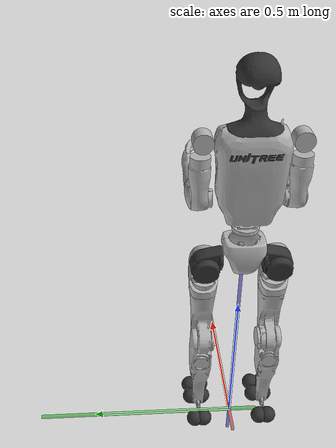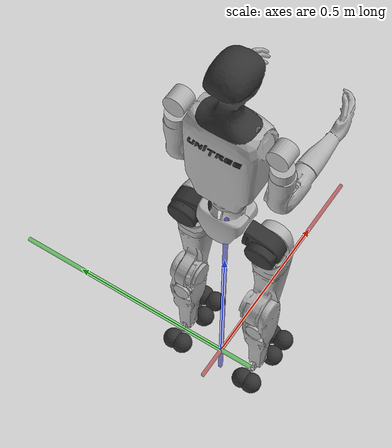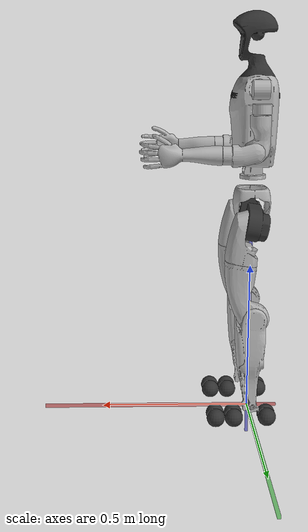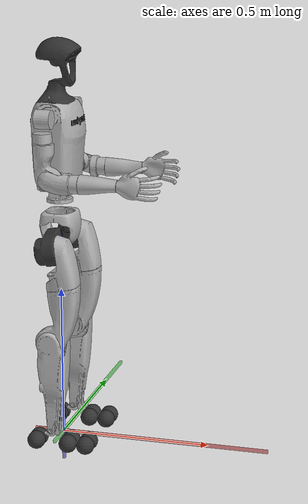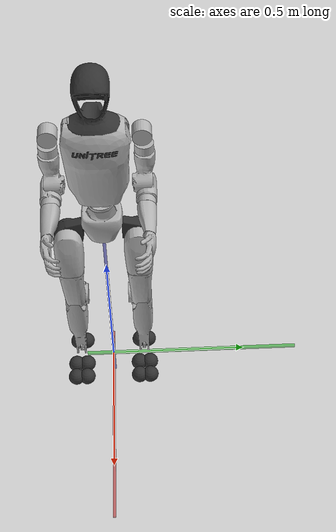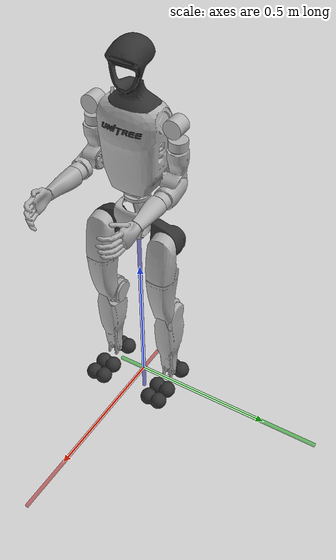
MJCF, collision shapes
<mujoco model="g1_12dof">
  <compiler angle="radian" meshdir="meshes/"/>

  <statistic meansize="0.144785" extent="1.23314" center="0.025392 2.0634e-05 -0.245975"/>
  <default>
    <joint damping="2" armature="0.01"/>
    <default class="g1">
      <position dampratio="1" inheritrange="1"/>
    </default>

  </default>

  <asset>
    <mesh name="pelvis" file="pelvis.STL"/>
    <mesh name="pelvis_contour_link" file="pelvis_contour_link.STL"/>
    <mesh name="left_hip_pitch_link" file="left_hip_pitch_link.STL"/>
    <mesh name="left_hip_roll_link" file="left_hip_roll_link.STL"/>
    <mesh name="left_hip_yaw_link" file="left_hip_yaw_link.STL"/>
    <mesh name="left_knee_link" file="left_knee_link.STL"/>
    <mesh name="left_ankle_pitch_link" file="left_ankle_pitch_link.STL"/>
    <mesh name="left_ankle_roll_link" file="left_ankle_roll_link.STL"/>
    <mesh name="right_hip_pitch_link" file="right_hip_pitch_link.STL"/>
    <mesh name="right_hip_roll_link" file="right_hip_roll_link.STL"/>
    <mesh name="right_hip_yaw_link" file="right_hip_yaw_link.STL"/>
    <mesh name="right_knee_link" file="right_knee_link.STL"/>
    <mesh name="right_ankle_pitch_link" file="right_ankle_pitch_link.STL"/>
    <mesh name="right_ankle_roll_link" file="right_ankle_roll_link.STL"/>
    <mesh name="torso_link_23dof_rev_1_0" file="torso_link_23dof_rev_1_0.STL"/>
    <mesh name="logo_link" file="logo_link.STL"/>
    <mesh name="head_link" file="head_link.STL"/>
    <mesh name="left_shoulder_pitch_link" file="left_shoulder_pitch_link.STL"/>
    <mesh name="left_shoulder_roll_link" file="left_shoulder_roll_link.STL"/>
    <mesh name="left_shoulder_yaw_link" file="left_shoulder_yaw_link.STL"/>
    <mesh name="left_elbow_link" file="left_elbow_link.STL"/>
    <mesh name="left_wrist_roll_rubber_hand" file="left_wrist_roll_rubber_hand.STL"/>
    <mesh name="right_shoulder_pitch_link" file="right_shoulder_pitch_link.STL"/>
    <mesh name="right_shoulder_roll_link" file="right_shoulder_roll_link.STL"/>
    <mesh name="right_shoulder_yaw_link" file="right_shoulder_yaw_link.STL"/>
    <mesh name="right_elbow_link" file="right_elbow_link.STL"/>
    <mesh name="right_wrist_roll_rubber_hand" file="right_wrist_roll_rubber_hand.STL"/>

    <texture type="2d" name="Metal044B_color"      file="../textures/Metal044B_2K-PNG/Metal044B_2K-PNG_Color.png"/>
    <texture type="2d" name="Metal044B_roughness"  file="../textures/Metal044B_2K-PNG/Metal044B_2K-PNG_Roughness.png"/>
    <texture type="2d" name="Metal044B_metalic"  file="../textures/Metal044B_2K-PNG/Metal044B_2K-PNG_Metalness.png"/>
    <texture type="2d" name="Metal044B_normal"     file="../textures/Metal044B_2K-PNG/Metal044B_2K-PNG_NormalDX.png"/>

    <material name="pbr_metal_silver_rough">
      <layer role="rgb"        texture="Metal044B_color"/>
      <layer role="normal"     texture="Metal044B_normal"/>
      <layer role="roughness"  texture="Metal044B_roughness"/>
      <layer role="metallic"  texture="Metal044B_metalic"/>
    </material>

    <texture type="2d" name="Plastic006_color"      file="../textures//Plastic006_2K-PNG/Plastic006_2K-PNG_Color.png"/>
    <texture type="2d" name="Plastic006_roughness"  file="../textures//Plastic006_2K-PNG/Plastic006_2K-PNG_Roughness.png"/>
    <texture type="2d" name="Plastic006_normal"     file="../textures//Plastic006_2K-PNG/Plastic006_2K-PNG_NormalDX.png"/>

    <material name="pbr_plastic_black" metallic ="0.05">
      <layer role="rgb"        texture="Plastic006_color"/>
      <layer role="normal"     texture="Plastic006_normal"/>
      <layer role="roughness"  texture="Plastic006_roughness"/>
    </material>
  </asset>

  <worldbody>
    <body name="command_indicator_mocap" pos="0 0 0" mocap="true">
      <geom conaffinity="0" contype="0" pos="0.3 0 0" rgba="0.7 0 0 0.5" size="0.4 0.005 0.005" type="box" group="1"></geom>
      <geom conaffinity="0" contype="0" pos="0 0.3 0" rgba="0 0.7 0 0.5" size="0.005 0.4 0.005" type="box" group="1"></geom>
      <geom conaffinity="0" contype="0" pos="0 0 0.3" rgba="0 0 0.7 0.5" size="0.005 0.005 0.4" type="box" group="1"></geom>
    </body>

    <body name="pelvis" pos="0 0 0.793">
      <inertial pos="0.0144905 0.000151462 0.144068" quat="0.999881 -0.000505543 -0.0154276 0.000328408" mass="17.7349" diaginertia="0.552723 0.454092 0.211762"/>
      <joint name="floating_base_joint" type="free" limited="false" actuatorfrclimited="false"/>
      <site name="imu_in_pelvis" size="0.01" pos="0.04525 0 -0.08339"/>
      <geom type="mesh" contype="0" conaffinity="0" group="1"  material="pbr_metal_silver_rough" density="0" rgba="0.2 0.2 0.2 1" mesh="pelvis"/>
      <geom type="mesh" contype="0" conaffinity="0" group="1"  material="pbr_metal_silver_rough" density="0" rgba="0.7 0.7 0.7 1" mesh="pelvis_contour_link"/>
      <geom type="mesh" rgba="0.7 0.7 0.7 1" mesh="pelvis_contour_link"/>
      <geom type="mesh" contype="0" conaffinity="0" group="1"  material="pbr_metal_silver_rough" density="0" rgba="0.7 0.7 0.7 1" mesh="torso_link_23dof_rev_1_0"/>
      <geom type="mesh" rgba="0.7 0.7 0.7 1" mesh="torso_link_23dof_rev_1_0"/>
      <geom type="mesh" contype="0" conaffinity="0" group="1"  material="pbr_plastic_black" density="0" rgba="0.2 0.2 0.2 1" mesh="logo_link"/>
      <geom type="mesh" rgba="0.2 0.2 0.2 1" mesh="logo_link"/>
      <geom type="mesh" contype="0" conaffinity="0" group="1"  material="pbr_plastic_black" density="0" rgba="0.2 0.2 0.2 1" mesh="head_link"/>
      <geom type="mesh" rgba="0.2 0.2 0.2 1" mesh="head_link"/>
      <geom pos="-7.2e-06 0.10022 0.29178" quat="0.990264 0.139201 1.38722e-05 -9.86868e-05" type="mesh" contype="0" conaffinity="0" group="1" density="0" material="pbr_metal_silver_rough" rgba="0.7 0.7 0.7 1" mesh="left_shoulder_pitch_link"/>
      <geom size="0.03 0.025" pos="7.72569e-07 0.141427 0.293195" quat="0.700213 0.0985001 0.700232 0.0983605" type="cylinder" rgba="0.7 0.7 0.7 1"/>
      <geom pos="3.73942e-07 0.14056 0.288961" quat="1 3.00026e-05 2.74716e-05 -9.57958e-05" type="mesh" contype="0" conaffinity="0" group="1" density="0" material="pbr_metal_silver_rough" rgba="0.7 0.7 0.7 1" mesh="left_shoulder_roll_link"/>
      <geom size="0.03 0.015" pos="-0.00400139 0.146564 0.235962" quat="1 3.00026e-05 2.74716e-05 -9.57958e-05" type="cylinder" rgba="0.7 0.7 0.7 1"/>
      <geom pos="-4.10007e-06 0.146807 0.185762" quat="1 3.00026e-05 2.74716e-05 -9.57958e-05" type="mesh" contype="0" conaffinity="0" group="1" density="0" material="pbr_metal_silver_rough" rgba="0.7 0.7 0.7 1" mesh="left_shoulder_yaw_link"/>
      <geom pos="-4.10007e-06 0.146807 0.185762" quat="1 3.00026e-05 2.74716e-05 -9.57958e-05" type="mesh" rgba="0.7 0.7 0.7 1" mesh="left_shoulder_yaw_link"/>
      <geom pos="0.0157745 0.146808 0.105243" quat="1 3.00026e-05 2.74716e-05 -9.57958e-05" type="mesh" contype="0" conaffinity="0" group="1" density="0" material="pbr_metal_silver_rough" rgba="0.7 0.7 0.7 1" mesh="left_elbow_link"/>
      <geom pos="0.0157745 0.146808 0.105243" quat="1 3.00026e-05 2.74716e-05 -9.57958e-05" type="mesh" rgba="0.7 0.7 0.7 1" mesh="left_elbow_link"/>
      <geom pos="0.115774 0.148678 0.0952374" quat="1 3.00026e-05 2.74716e-05 -9.57958e-05" type="mesh" contype="0" conaffinity="0" group="1" density="0" material="pbr_metal_silver_rough" rgba="0.7 0.7 0.7 1" mesh="left_wrist_roll_rubber_hand"/>
      <geom pos="0.115774 0.148678 0.0952374" quat="1 3.00026e-05 2.74716e-05 -9.57958e-05" type="mesh" rgba="0.7 0.7 0.7 1" mesh="left_wrist_roll_rubber_hand"/>
      <geom pos="-7.2e-06 -0.10021 0.29178" quat="0.990264 -0.139201 1.38722e-05 9.86868e-05" type="mesh" contype="0" conaffinity="0" group="1" density="0" material="pbr_metal_silver_rough" rgba="0.7 0.7 0.7 1" mesh="right_shoulder_pitch_link"/>
      <geom size="0.03 0.025" pos="7.72569e-07 -0.141417 0.293195" quat="0.700213 -0.0985001 0.700232 -0.0983605" type="cylinder" rgba="0.7 0.7 0.7 1"/>
      <geom pos="3.73942e-07 -0.14055 0.288961" quat="1 -3.00026e-05 2.74716e-05 9.57958e-05" type="mesh" contype="0" conaffinity="0" group="1" density="0" material="pbr_metal_silver_rough" rgba="0.7 0.7 0.7 1" mesh="right_shoulder_roll_link"/>
      <geom size="0.03 0.015" pos="-0.00400139 -0.146554 0.235962" quat="1 -3.00026e-05 2.74716e-05 9.57958e-05" type="cylinder" rgba="0.7 0.7 0.7 1"/>
      <geom pos="-4.10007e-06 -0.146797 0.185762" quat="1 -3.00026e-05 2.74716e-05 9.57958e-05" type="mesh" contype="0" conaffinity="0" group="1" density="0" material="pbr_metal_silver_rough" rgba="0.7 0.7 0.7 1" mesh="right_shoulder_yaw_link"/>
      <geom pos="-4.10007e-06 -0.146797 0.185762" quat="1 -3.00026e-05 2.74716e-05 9.57958e-05" type="mesh" rgba="0.7 0.7 0.7 1" mesh="right_shoulder_yaw_link"/>
      <geom pos="0.0157745 -0.146798 0.105243" quat="1 -3.00026e-05 2.74716e-05 9.57958e-05" type="mesh" contype="0" conaffinity="0" group="1" density="0" material="pbr_metal_silver_rough" rgba="0.7 0.7 0.7 1" mesh="right_elbow_link"/>
      <geom pos="0.0157745 -0.146798 0.105243" quat="1 -3.00026e-05 2.74716e-05 9.57958e-05" type="mesh" rgba="0.7 0.7 0.7 1" mesh="right_elbow_link"/>
      <geom pos="0.115774 -0.148668 0.0952374" quat="1 -3.00026e-05 2.74716e-05 9.57958e-05" type="mesh" contype="0" conaffinity="0" group="1" density="0" material="pbr_metal_silver_rough" rgba="0.7 0.7 0.7 1" mesh="right_wrist_roll_rubber_hand"/>
      <geom pos="0.115774 -0.148668 0.0952374" quat="1 -3.00026e-05 2.74716e-05 9.57958e-05" type="mesh" rgba="0.7 0.7 0.7 1" mesh="right_wrist_roll_rubber_hand"/>
      <body name="left_hip_pitch_link" pos="0 0.064452 -0.1027">
        <inertial pos="0.002741 0.047791 -0.02606" quat="0.954862 0.293964 0.0302556 0.030122" mass="1.35" diaginertia="0.00181517 0.00153422 0.00116212"/>
        <joint name="left_hip_pitch_joint" pos="0 0 0" axis="0 1 0" range="-2.5307 2.8798" actuatorfrcrange="-88 88"/>
        <geom type="mesh" contype="0" conaffinity="0" group="1"  material="pbr_plastic_black" density="0" rgba="0.2 0.2 0.2 1" mesh="left_hip_pitch_link"/>
        <geom type="mesh" rgba="0.2 0.2 0.2 1" mesh="left_hip_pitch_link"/>
        <body name="left_hip_roll_link" pos="0 0.052 -0.030465" quat="0.996179 0 -0.0873386 0">
          <inertial pos="0.029812 -0.001045 -0.087934" quat="0.977808 -1.97119e-05 0.205576 -0.0403793" mass="1.52" diaginertia="0.00254986 0.00241169 0.00148755"/>
          <joint name="left_hip_roll_joint" pos="0 0 0" axis="1 0 0" range="-0.5236 2.9671" actuatorfrcrange="-139 139"/>
          <geom type="mesh" contype="0" conaffinity="0" group="1"  material="pbr_metal_silver_rough" density="0" rgba="0.7 0.7 0.7 1" mesh="left_hip_roll_link"/>
          <geom type="mesh" rgba="0.7 0.7 0.7 1" mesh="left_hip_roll_link"/>
          <body name="left_hip_yaw_link" pos="0.025001 0 -0.12412">
            <inertial pos="-0.057709 -0.010981 -0.15078" quat="0.600598 0.15832 0.223482 0.751181" mass="1.702" diaginertia="0.00776166 0.00717575 0.00160139"/>
            <joint name="left_hip_yaw_joint" pos="0 0 0" axis="0 0 1" range="-2.7576 2.7576" actuatorfrcrange="-88 88"/>
            <geom type="mesh" contype="0" conaffinity="0" group="1"  material="pbr_metal_silver_rough" density="0" rgba="0.7 0.7 0.7 1" mesh="left_hip_yaw_link"/>
            <geom type="mesh" rgba="0.7 0.7 0.7 1" mesh="left_hip_yaw_link"/>
            <body name="left_knee_link" pos="-0.078273 0.0021489 -0.17734" quat="0.996179 0 0.0873386 0">
              <inertial pos="0.005457 0.003964 -0.12074" quat="0.923418 -0.0327699 0.0158246 0.382067" mass="1.932" diaginertia="0.0113804 0.0112778 0.00146458"/>
              <joint name="left_knee_joint" damping="4" pos="0 0 0" axis="0 1 0" range="-0.087267 2.8798" actuatorfrcrange="-139 139"/>
              <geom type="mesh" contype="0" conaffinity="0" group="1"  material="pbr_metal_silver_rough" density="0" rgba="0.7 0.7 0.7 1" mesh="left_knee_link"/>
              <geom type="mesh" rgba="0.7 0.7 0.7 1" mesh="left_knee_link"/>
              <body name="left_ankle_pitch_link" pos="0 -9.4445e-05 -0.30001">
                <inertial pos="-0.007269 0 0.011137" quat="0.603053 0.369225 0.369225 0.603053" mass="0.074" diaginertia="1.89e-05 1.40805e-05 6.9195e-06"/>
                <joint name="left_ankle_pitch_joint" pos="0 0 0" axis="0 1 0" range="-0.87267 0.5236" actuatorfrcrange="-50 50"/>
                <geom type="mesh" contype="0" conaffinity="0" group="1"  material="pbr_metal_silver_rough" density="0" rgba="0.7 0.7 0.7 1" mesh="left_ankle_pitch_link"/>
                <geom type="mesh" rgba="0.7 0.7 0.7 1" mesh="left_ankle_pitch_link"/>
                <body name="left_ankle_roll_link" pos="0 0 -0.017558">
                  <inertial pos="0.026505 0 -0.016425" quat="-0.000481092 0.728482 -0.000618967 0.685065" mass="0.608" diaginertia="0.00167218 0.0016161 0.000217621"/>
                  <joint name="left_ankle_roll_joint" pos="0 0 0" axis="1 0 0" range="-0.2618 0.2618" actuatorfrcrange="-50 50"/>
                  <geom type="mesh" contype="0" conaffinity="0" group="1"  material="pbr_plastic_black" density="0" rgba="0.2 0.2 0.2 1" mesh="left_ankle_roll_link"/>
                  <geom size="0.03" pos="-0.05 0.015 -0.02" rgba="0.2 0.2 0.2 1" group="3" friction="1 0.005 0.0001"  priority="1" solref="0.02 1" solimp="0.9 0.4 0.01" margin="0.01" gap="0.001"/>
                  <geom size="0.03" pos="-0.05 -0.015 -0.02" rgba="0.2 0.2 0.2 1" group="3" friction="1 0.005 0.0001"  priority="1" solref="0.02 1" solimp="0.9 0.4 0.01" margin="0.01" gap="0.001"/>
                  <geom size="0.03" pos="0.12 0.02 -0.02" rgba="0.2 0.2 0.2 1" group="3" friction="1 0.005 0.0001"  priority="1" solref="0.02 1" solimp="0.9 0.4 0.01" margin="0.01" gap="0.001"/>
                  <geom size="0.03" pos="0.12 -0.02 -0.02" rgba="0.2 0.2 0.2 1" group="3" friction="1 0.005 0.0001"  priority="1" solref="0.02 1" solimp="0.9 0.4 0.01" margin="0.01" gap="0.001"/>
                  <geom size="0.03" pos="0.06 0.02 -0.02" rgba="0.2 0.2 0.2 1" group="3" friction="1 0.005 0.0001"  priority="1" solref="0.02 1" solimp="0.9 0.4 0.01" margin="0.01" gap="0.001"/>
                  <geom size="0.03" pos="0.06 -0.02 -0.02" rgba="0.2 0.2 0.2 1" group="3" friction="1 0.005 0.0001"  priority="1" solref="0.02 1" solimp="0.9 0.4 0.01" margin="0.01" gap="0.001"/>
                  <site name="lf-tc-front" type="box" group="3" size="0.073  0.071   0.054" pos="0.08 0 -0.02" rgba="0 1 0 0" />
                  <site name="lf-tc-back" type="box" group="3" size="0.043  0.071   0.054" pos="-0.05 0 -0.02" rgba="0 1 0 0" />
                </body>
              </body>
            </body>
          </body>
        </body>
      </body>
      <body name="right_hip_pitch_link" pos="0 -0.064452 -0.1027">
        <inertial pos="0.002741 -0.047791 -0.02606" quat="0.954862 -0.293964 0.0302556 -0.030122" mass="1.35" diaginertia="0.00181517 0.00153422 0.00116212"/>
        <joint name="right_hip_pitch_joint" pos="0 0 0" axis="0 1 0" range="-2.5307 2.8798" actuatorfrcrange="-88 88"/>
        <geom type="mesh" contype="0" conaffinity="0" group="1"  material="pbr_plastic_black" density="0" rgba="0.2 0.2 0.2 1" mesh="right_hip_pitch_link"/>
        <geom type="mesh" rgba="0.2 0.2 0.2 1" mesh="right_hip_pitch_link"/>
        <body name="right_hip_roll_link" pos="0 -0.052 -0.030465" quat="0.996179 0 -0.0873386 0">
          <inertial pos="0.029812 0.001045 -0.087934" quat="0.977808 1.97119e-05 0.205576 0.0403793" mass="1.52" diaginertia="0.00254986 0.00241169 0.00148755"/>
          <joint name="right_hip_roll_joint" pos="0 0 0" axis="1 0 0" range="-2.9671 0.5236" actuatorfrcrange="-139 139"/>
          <geom type="mesh" contype="0" conaffinity="0" group="1"  material="pbr_metal_silver_rough" density="0" rgba="0.7 0.7 0.7 1" mesh="right_hip_roll_link"/>
          <geom type="mesh" rgba="0.7 0.7 0.7 1" mesh="right_hip_roll_link"/>
          <body name="right_hip_yaw_link" pos="0.025001 0 -0.12412">
            <inertial pos="-0.057709 0.010981 -0.15078" quat="0.751181 0.223482 0.15832 0.600598" mass="1.702" diaginertia="0.00776166 0.00717575 0.00160139"/>
            <joint name="right_hip_yaw_joint" pos="0 0 0" axis="0 0 1" range="-2.7576 2.7576" actuatorfrcrange="-88 88"/>
            <geom type="mesh" contype="0" conaffinity="0" group="1"  material="pbr_metal_silver_rough" density="0" rgba="0.7 0.7 0.7 1" mesh="right_hip_yaw_link"/>
            <geom type="mesh" rgba="0.7 0.7 0.7 1" mesh="right_hip_yaw_link"/>
            <body name="right_knee_link" pos="-0.078273 -0.0021489 -0.17734" quat="0.996179 0 0.0873386 0">
              <inertial pos="0.005457 -0.003964 -0.12074" quat="0.923439 0.0345276 0.0116333 -0.382012" mass="1.932" diaginertia="0.011374 0.0112843 0.00146452"/>
              <joint name="right_knee_joint" damping="4" pos="0 0 0" axis="0 1 0" range="-0.087267 2.8798" actuatorfrcrange="-139 139"/>
              <geom type="mesh" contype="0" conaffinity="0" group="1"  material="pbr_metal_silver_rough" density="0" rgba="0.7 0.7 0.7 1" mesh="right_knee_link"/>
              <geom type="mesh" rgba="0.7 0.7 0.7 1" mesh="right_knee_link"/>
              <body name="right_ankle_pitch_link" pos="0 9.4445e-05 -0.30001">
                <inertial pos="-0.007269 0 0.011137" quat="0.603053 0.369225 0.369225 0.603053" mass="0.074" diaginertia="1.89e-05 1.40805e-05 6.9195e-06"/>
                <joint name="right_ankle_pitch_joint" pos="0 0 0" axis="0 1 0" range="-0.87267 0.5236" actuatorfrcrange="-50 50"/>
                <geom type="mesh" contype="0" conaffinity="0" group="1"  material="pbr_metal_silver_rough" density="0" rgba="0.7 0.7 0.7 1" mesh="right_ankle_pitch_link"/>
                <geom type="mesh" rgba="0.7 0.7 0.7 1" mesh="right_ankle_pitch_link"/>
                <body name="right_ankle_roll_link" pos="0 0 -0.017558">
                  <inertial pos="0.026505 0 -0.016425" quat="0.000481092 0.728482 0.000618967 0.685065" mass="0.608" diaginertia="0.00167218 0.0016161 0.000217621"/>
                  <joint name="right_ankle_roll_joint" pos="0 0 0" axis="1 0 0" range="-0.2618 0.2618" actuatorfrcrange="-50 50"/>
                  <geom type="mesh" contype="0" conaffinity="0" group="1"  material="pbr_plastic_black" density="0" rgba="0.2 0.2 0.2 1" mesh="right_ankle_roll_link"/>
                  <geom size="0.03" pos="-0.05 0.015 -0.02" rgba="0.2 0.2 0.2 1" group="3" friction="1 0.005 0.0001"  priority="1" solref="0.02 1" solimp="0.9 0.4 0.01" margin="0.01" gap="0.001"/>
                  <geom size="0.03" pos="-0.05 -0.015 -0.02" rgba="0.2 0.2 0.2 1" group="3" friction="1 0.005 0.0001"  priority="1" solref="0.02 1" solimp="0.9 0.4 0.01" margin="0.01" gap="0.001"/>
                  <geom size="0.03" pos="0.12 0.02 -0.02" rgba="0.2 0.2 0.2 1" group="3" friction="1 0.005 0.0001"  priority="1" solref="0.02 1" solimp="0.9 0.4 0.01" margin="0.01" gap="0.001"/>
                  <geom size="0.03" pos="0.12 -0.02 -0.02" rgba="0.2 0.2 0.2 1" group="3" friction="1 0.005 0.0001"  priority="1" solref="0.02 1" solimp="0.9 0.4 0.01" margin="0.01" gap="0.001"/>
                  <geom size="0.03" pos="0.06 0.02 -0.02" rgba="0.2 0.2 0.2 1" group="3" friction="1 0.005 0.0001"  priority="1" solref="0.02 1" solimp="0.9 0.4 0.01" margin="0.01" gap="0.001"/>
                  <geom size="0.03" pos="0.06 -0.02 -0.02" rgba="0.2 0.2 0.2 1" group="3" friction="1 0.005 0.0001"  priority="1" solref="0.02 1" solimp="0.9 0.4 0.01" margin="0.01" gap="0.001"/>
                  <site name="rf-tc-front" type="box" group="3" size="0.063  0.061   0.044" pos="0.08 0 -0.02" rgba="0 1 0 0" />
                  <site name="rf-tc-back" type="box" group="3" size="0.033  0.061   0.044" pos="-0.05 0 -0.02" rgba="0 1 0 0" />
                </body>
              </body>
            </body>
          </body>
        </body>
      </body>
    </body>
  </worldbody>
  <actuator>
    <position class="g1" name="left_hip_pitch_joint"       joint="left_hip_pitch_joint"       kp="100"/>
    <position class="g1" name="left_hip_roll_joint"        joint="left_hip_roll_joint"        kp="100"/>
    <position class="g1" name="left_hip_yaw_joint"         joint="left_hip_yaw_joint"         kp="100"/>
    <position class="g1" name="left_knee_joint"            joint="left_knee_joint"            kp="150"/>
    <position class="g1" name="left_ankle_pitch_joint"     joint="left_ankle_pitch_joint"     kp="40" />
    <position class="g1" name="left_ankle_roll_joint"      joint="left_ankle_roll_joint"      kp="40" />

    <position class="g1" name="right_hip_pitch_joint"      joint="right_hip_pitch_joint"      kp="100"/>
    <position class="g1" name="right_hip_roll_joint"       joint="right_hip_roll_joint"       kp="100"/>
    <position class="g1" name="right_hip_yaw_joint"        joint="right_hip_yaw_joint"        kp="100"/>
    <position class="g1" name="right_knee_joint"           joint="right_knee_joint"           kp="150"/>
    <position class="g1" name="right_ankle_pitch_joint"    joint="right_ankle_pitch_joint"    kp="40" />
    <position class="g1" name="right_ankle_roll_joint"     joint="right_ankle_roll_joint"     kp="40" />
  </actuator>

  <sensor>
    <framequat name="imu-pelvis-quat" objtype="site" objname="imu_in_pelvis"/>
    <gyro name="imu-pelvis-angular-velocity" site="imu_in_pelvis" noise="5e-4" cutoff="34.9"/>
    <accelerometer name="imu-pelvis-linear-acceleration" site="imu_in_pelvis" noise="1e-2" cutoff="157"/>
    <touch name="lf-touch-front" site="lf-tc-front" />
    <touch name="lf-touch-back" site="lf-tc-back" />
    <touch name="rf-touch-front" site="rf-tc-front" />
    <touch name="rf-touch-back" site="rf-tc-back" />
  </sensor>
</mujoco>
